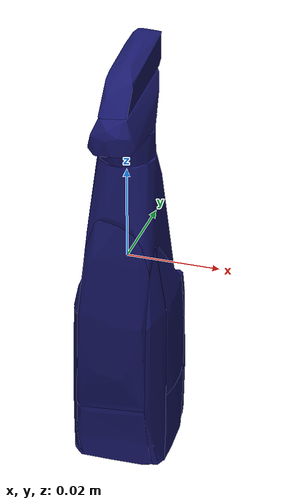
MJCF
<mujoco model="Sprayflask">
  <asset>
    <mesh file="meshes/Sprayflask/Sprayflask_0.stl" name="Sprayflask_0" scale="0.8 0.8 0.8"/>
    <mesh file="meshes/Sprayflask/Sprayflask_1.stl" name="Sprayflask_1" scale="0.8 0.8 0.8"/>
    <mesh file="meshes/Sprayflask/Sprayflask_2.stl" name="Sprayflask_2" scale="0.8 0.8 0.8"/>
    <mesh file="meshes/Sprayflask/Sprayflask_3.stl" name="Sprayflask_3" scale="0.8 0.8 0.8"/>
    <mesh file="meshes/Sprayflask/Sprayflask_4.stl" name="Sprayflask_4" scale="0.8 0.8 0.8"/>
    <mesh file="meshes/Sprayflask/Sprayflask_5.stl" name="Sprayflask_5" scale="0.8 0.8 0.8"/>
    <mesh file="meshes/Sprayflask/Sprayflask_6.stl" name="Sprayflask_6" scale="0.8 0.8 0.8"/>
    <mesh file="meshes/Sprayflask/Sprayflask_7.stl" name="Sprayflask_7" scale="0.8 0.8 0.8"/>
    <mesh file="meshes/Sprayflask/Sprayflask_8.stl" name="Sprayflask_8" scale="0.8 0.8 0.8"/>
    <mesh file="meshes/Sprayflask/Sprayflask_9.stl" name="Sprayflask_9" scale="0.8 0.8 0.8"/>
    <mesh file="meshes/Sprayflask/Sprayflask_10.stl" name="Sprayflask_10" scale="0.8 0.8 0.8"/>
    <mesh file="meshes/Sprayflask/Sprayflask_11.stl" name="Sprayflask_11" scale="0.8 0.8 0.8"/>
    <mesh file="meshes/Sprayflask/Sprayflask_12.stl" name="Sprayflask_12" scale="0.8 0.8 0.8"/>
    <mesh file="meshes/Sprayflask/Sprayflask_13.stl" name="Sprayflask_13" scale="0.8 0.8 0.8"/>
    <mesh file="meshes/Sprayflask/Sprayflask_14.stl" name="Sprayflask_14" scale="0.8 0.8 0.8"/>
    <mesh file="meshes/Sprayflask/Sprayflask_15.stl" name="Sprayflask_15" scale="0.8 0.8 0.8"/>
    <mesh file="meshes/Sprayflask/Sprayflask_16.stl" name="Sprayflask_16" scale="0.8 0.8 0.8"/>
    <mesh file="meshes/Sprayflask/Sprayflask_17.stl" name="Sprayflask_17" scale="0.8 0.8 0.8"/>
    <mesh file="meshes/Sprayflask/Sprayflask_18.stl" name="Sprayflask_18" scale="0.8 0.8 0.8"/>
    <mesh file="meshes/Sprayflask/Sprayflask_19.stl" name="Sprayflask_19" scale="0.8 0.8 0.8"/>
  </asset>
  <worldbody>
    <body>
      <body name="collision">
        <geom condim="4" density="100" friction="1.5 0.3 0.1" group="1" mesh="Sprayflask_0" pos="0 0 0" rgba="0.1 0.1 0.44 1" solimp="0.998 0.998 0.001" solref="0.002 1" type="mesh"/>
        <geom condim="4" density="100" friction="1.5 0.3 0.1" group="1" mesh="Sprayflask_1" pos="0 0 0" rgba="0.1 0.1 0.44 1" solimp="0.998 0.998 0.001" solref="0.002 1" type="mesh"/>
        <geom condim="4" density="100" friction="1.5 0.3 0.1" group="1" mesh="Sprayflask_2" pos="0 0 0" rgba="0.1 0.1 0.44 1" solimp="0.998 0.998 0.001" solref="0.002 1" type="mesh"/>
        <geom condim="4" density="100" friction="1.5 0.3 0.1" group="1" mesh="Sprayflask_3" pos="0 0 0" rgba="0.1 0.1 0.44 1" solimp="0.998 0.998 0.001" solref="0.002 1" type="mesh"/>
        <geom condim="4" density="100" friction="1.5 0.3 0.1" group="1" mesh="Sprayflask_4" pos="0 0 0" rgba="0.1 0.1 0.44 1" solimp="0.998 0.998 0.001" solref="0.002 1" type="mesh"/>
        <geom condim="4" density="100" friction="1.5 0.3 0.1" group="1" mesh="Sprayflask_5" pos="0 0 0" rgba="0.1 0.1 0.44 1" solimp="0.998 0.998 0.001" solref="0.002 1" type="mesh"/>
        <geom condim="4" density="100" friction="1.5 0.3 0.1" group="1" mesh="Sprayflask_6" pos="0 0 0" rgba="0.1 0.1 0.44 1" solimp="0.998 0.998 0.001" solref="0.002 1" type="mesh"/>
        <geom condim="4" density="100" friction="1.5 0.3 0.1" group="1" mesh="Sprayflask_7" pos="0 0 0" rgba="0.1 0.1 0.44 1" solimp="0.998 0.998 0.001" solref="0.002 1" type="mesh"/>
        <geom condim="4" density="100" friction="1.5 0.3 0.1" group="1" mesh="Sprayflask_8" pos="0 0 0" rgba="0.1 0.1 0.44 1" solimp="0.998 0.998 0.001" solref="0.002 1" type="mesh"/>
        <geom condim="4" density="100" friction="1.5 0.3 0.1" group="1" mesh="Sprayflask_9" pos="0 0 0" rgba="0.1 0.1 0.44 1" solimp="0.998 0.998 0.001" solref="0.002 1" type="mesh"/>
        <geom condim="4" density="100" friction="1.5 0.3 0.1" group="1" mesh="Sprayflask_10" pos="0 0 0" rgba="0.1 0.1 0.44 1" solimp="0.998 0.998 0.001" solref="0.002 1" type="mesh"/>
        <geom condim="4" density="100" friction="1.5 0.3 0.1" group="1" mesh="Sprayflask_11" pos="0 0 0" rgba="0.1 0.1 0.44 1" solimp="0.998 0.998 0.001" solref="0.002 1" type="mesh"/>
        <geom condim="4" density="100" friction="1.5 0.3 0.1" group="1" mesh="Sprayflask_12" pos="0 0 0" rgba="0.1 0.1 0.44 1" solimp="0.998 0.998 0.001" solref="0.002 1" type="mesh"/>
        <geom condim="4" density="100" friction="1.5 0.3 0.1" group="1" mesh="Sprayflask_13" pos="0 0 0" rgba="0.1 0.1 0.44 1" solimp="0.998 0.998 0.001" solref="0.002 1" type="mesh"/>
        <geom condim="4" density="100" friction="1.5 0.3 0.1" group="1" mesh="Sprayflask_14" pos="0 0 0" rgba="0.1 0.1 0.44 1" solimp="0.998 0.998 0.001" solref="0.002 1" type="mesh"/>
        <geom condim="4" density="100" friction="1.5 0.3 0.1" group="1" mesh="Sprayflask_15" pos="0 0 0" rgba="0.1 0.1 0.44 1" solimp="0.998 0.998 0.001" solref="0.002 1" type="mesh"/>
        <geom condim="4" density="100" friction="1.5 0.3 0.1" group="1" mesh="Sprayflask_16" pos="0 0 0" rgba="0.1 0.1 0.44 1" solimp="0.998 0.998 0.001" solref="0.002 1" type="mesh"/>
        <geom condim="4" density="100" friction="1.5 0.3 0.1" group="1" mesh="Sprayflask_17" pos="0 0 0" rgba="0.1 0.1 0.44 1" solimp="0.998 0.998 0.001" solref="0.002 1" type="mesh"/>
        <geom condim="4" density="100" friction="1.5 0.3 0.1" group="1" mesh="Sprayflask_18" pos="0 0 0" rgba="0.1 0.1 0.44 1" solimp="0.998 0.998 0.001" solref="0.002 1" type="mesh"/>
        <geom condim="4" density="100" friction="1.5 0.3 0.1" group="1" mesh="Sprayflask_19" pos="0 0 0" rgba="0.1 0.1 0.44 1" solimp="0.998 0.998 0.001" solref="0.002 1" type="mesh"/>
      </body>
      <body name="visual">
        <geom conaffinity="0" contype="0" group="0" mass="0.0001" mesh="Sprayflask_0" pos="0 0 0" rgba="0 1 0 1" type="mesh"/>
        <geom conaffinity="0" contype="0" group="0" mass="0.0001" mesh="Sprayflask_1" pos="0 0 0" rgba="0 1 0 1" type="mesh"/>
        <geom conaffinity="0" contype="0" group="0" mass="0.0001" mesh="Sprayflask_2" pos="0 0 0" rgba="0 1 0 1" type="mesh"/>
        <geom conaffinity="0" contype="0" group="0" mass="0.0001" mesh="Sprayflask_3" pos="0 0 0" rgba="0 1 0 1" type="mesh"/>
        <geom conaffinity="0" contype="0" group="0" mass="0.0001" mesh="Sprayflask_4" pos="0 0 0" rgba="0 1 0 1" type="mesh"/>
        <geom conaffinity="0" contype="0" group="0" mass="0.0001" mesh="Sprayflask_5" pos="0 0 0" rgba="0 1 0 1" type="mesh"/>
        <geom conaffinity="0" contype="0" group="0" mass="0.0001" mesh="Sprayflask_6" pos="0 0 0" rgba="0 1 0 1" type="mesh"/>
        <geom conaffinity="0" contype="0" group="0" mass="0.0001" mesh="Sprayflask_7" pos="0 0 0" rgba="0 1 0 1" type="mesh"/>
        <geom conaffinity="0" contype="0" group="0" mass="0.0001" mesh="Sprayflask_8" pos="0 0 0" rgba="0 1 0 1" type="mesh"/>
        <geom conaffinity="0" contype="0" group="0" mass="0.0001" mesh="Sprayflask_9" pos="0 0 0" rgba="0 1 0 1" type="mesh"/>
        <geom conaffinity="0" contype="0" group="0" mass="0.0001" mesh="Sprayflask_10" pos="0 0 0" rgba="0 1 0 1" type="mesh"/>
        <geom conaffinity="0" contype="0" group="0" mass="0.0001" mesh="Sprayflask_11" pos="0 0 0" rgba="0 1 0 1" type="mesh"/>
        <geom conaffinity="0" contype="0" group="0" mass="0.0001" mesh="Sprayflask_12" pos="0 0 0" rgba="0 1 0 1" type="mesh"/>
        <geom conaffinity="0" contype="0" group="0" mass="0.0001" mesh="Sprayflask_13" pos="0 0 0" rgba="0 1 0 1" type="mesh"/>
        <geom conaffinity="0" contype="0" group="0" mass="0.0001" mesh="Sprayflask_14" pos="0 0 0" rgba="0 1 0 1" type="mesh"/>
        <geom conaffinity="0" contype="0" group="0" mass="0.0001" mesh="Sprayflask_15" pos="0 0 0" rgba="0 1 0 1" type="mesh"/>
        <geom conaffinity="0" contype="0" group="0" mass="0.0001" mesh="Sprayflask_16" pos="0 0 0" rgba="0 1 0 1" type="mesh"/>
        <geom conaffinity="0" contype="0" group="0" mass="0.0001" mesh="Sprayflask_17" pos="0 0 0" rgba="0 1 0 1" type="mesh"/>
        <geom conaffinity="0" contype="0" group="0" mass="0.0001" mesh="Sprayflask_18" pos="0 0 0" rgba="0 1 0 1" type="mesh"/>
        <geom conaffinity="0" contype="0" group="0" mass="0.0001" mesh="Sprayflask_19" pos="0 0 0" rgba="0 1 0 1" type="mesh"/>
      </body>
      <site name="bottom_site" pos="0 0 -0.06" rgba="0 0 0 0" size="0.005"/>
      <site name="top_site" pos="0 0 0.04" rgba="0 0 0 0" size="0.005"/>
      <site name="horizontal_radius_site" pos="0.025 0.025 0" rgba="0 0 0 0" size="0.005"/>
    </body>
  </worldbody>
</mujoco>
